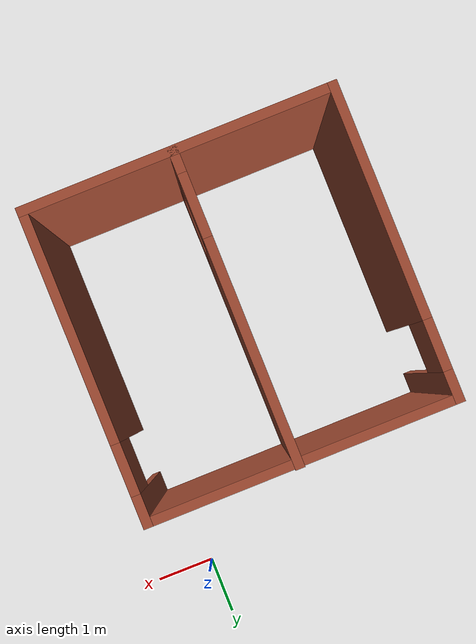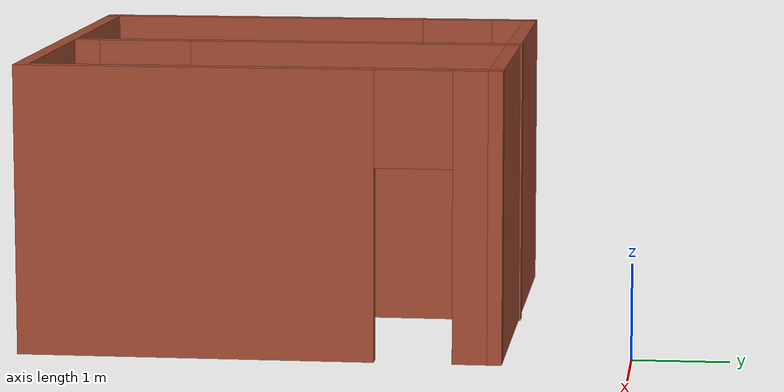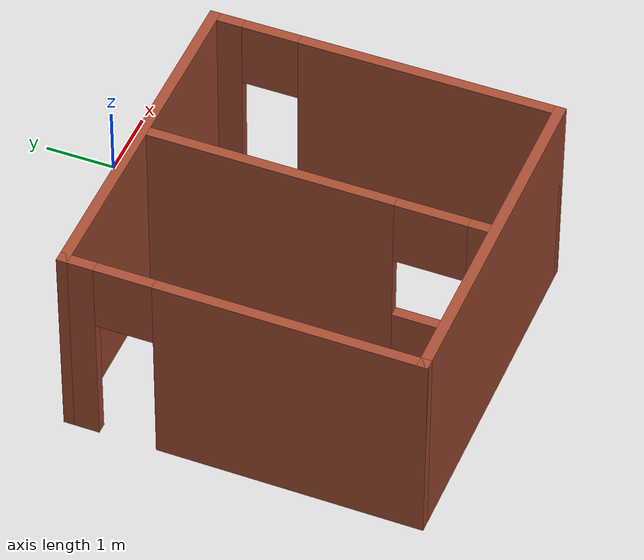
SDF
<?xml version='1.0'?>
<sdf version='1.7'>
  <model name='labyrinth'>
    <pose>-2.075 -3.1475 0 0 -0 0</pose>
    <link name='Wall_11'>
      <pose>0.075 -0.6275 0 0 -0 -1.5708</pose>
      <visual name='Wall_11_Visual_0'>
        <pose>-0.7025 0 1.5 0 -0 0</pose>
        <geometry>
          <box>
            <size>3.595 0.15 3</size>
          </box>
        </geometry>
        <material>
          <script>
            <uri>file://media/materials/scripts/gazebo.material</uri>
            <name>Gazebo/Bricks</name>
          </script>
          <ambient>1 1 1 1</ambient>
        </material>
        <meta>
          <layer>0</layer>
        </meta>
      </visual>
      <collision name='Wall_11_Collision_0'>
        <geometry>
          <box>
            <size>3.595 0.15 3</size>
          </box>
        </geometry>
        <pose>-0.7025 0 1.5 0 -0 0</pose>
      </collision>
      <visual name='Wall_11_Visual_1'>
        <pose>1.7975 0 0.5 0 -0 0</pose>
        <geometry>
          <box>
            <size>1.405 0.15 1</size>
          </box>
        </geometry>
        <material>
          <script>
            <uri>file://media/materials/scripts/gazebo.material</uri>
            <name>Gazebo/Bricks</name>
          </script>
          <ambient>1 1 1 1</ambient>
        </material>
        <meta>
          <layer>0</layer>
        </meta>
      </visual>
      <collision name='Wall_11_Collision_1'>
        <geometry>
          <box>
            <size>1.405 0.15 1</size>
          </box>
        </geometry>
        <pose>1.7975 0 0.5 0 -0 0</pose>
      </collision>
      <visual name='Wall_11_Visual_2'>
        <pose>2.2975 0 2 0 -0 0</pose>
        <geometry>
          <box>
            <size>0.405 0.15 2</size>
          </box>
        </geometry>
        <material>
          <script>
            <uri>file://media/materials/scripts/gazebo.material</uri>
            <name>Gazebo/Bricks</name>
          </script>
          <ambient>1 1 1 1</ambient>
        </material>
        <meta>
          <layer>0</layer>
        </meta>
      </visual>
      <collision name='Wall_11_Collision_2'>
        <geometry>
          <box>
            <size>0.405 0.15 2</size>
          </box>
        </geometry>
        <pose>2.2975 0 2 0 -0 0</pose>
      </collision>
      <visual name='Wall_11_Visual_3'>
        <pose>1.595 0 2.5 0 -0 0</pose>
        <geometry>
          <box>
            <size>1 0.15 1</size>
          </box>
        </geometry>
        <material>
          <script>
            <uri>file://media/materials/scripts/gazebo.material</uri>
            <name>Gazebo/Bricks</name>
          </script>
          <ambient>1 1 1 1</ambient>
        </material>
        <meta>
          <layer>0</layer>
        </meta>
      </visual>
      <collision name='Wall_11_Collision_3'>
        <geometry>
          <box>
            <size>1 0.15 1</size>
          </box>
        </geometry>
        <pose>1.595 0 2.5 0 -0 0</pose>
      </collision>
    </link>
    <link name='Wall_6'>
      <pose>-2.425 -0.6475 0 0 -0 -1.5708</pose>
      <visual name='Wall_6_Visual_0'>
        <pose>-2.2475 0 1.5 0 -0 0</pose>
        <geometry>
          <box>
            <size>0.505 0.15 3</size>
          </box>
        </geometry>
        <material>
          <script>
            <uri>file://media/materials/scripts/gazebo.material</uri>
            <name>Gazebo/Bricks</name>
          </script>
          <ambient>1 1 1 1</ambient>
        </material>
        <meta>
          <layer>0</layer>
        </meta>
      </visual>
      <collision name='Wall_6_Collision_0'>
        <geometry>
          <box>
            <size>0.505 0.15 3</size>
          </box>
        </geometry>
        <pose>-2.2475 0 1.5 0 -0 0</pose>
      </collision>
      <visual name='Wall_6_Visual_1'>
        <pose>0.6525 0 1.5 0 -0 0</pose>
        <geometry>
          <box>
            <size>3.695 0.15 3</size>
          </box>
        </geometry>
        <material>
          <script>
            <uri>file://media/materials/scripts/gazebo.material</uri>
            <name>Gazebo/Bricks</name>
          </script>
          <ambient>1 1 1 1</ambient>
        </material>
        <meta>
          <layer>0</layer>
        </meta>
      </visual>
      <collision name='Wall_6_Collision_1'>
        <geometry>
          <box>
            <size>3.695 0.15 3</size>
          </box>
        </geometry>
        <pose>0.6525 0 1.5 0 -0 0</pose>
      </collision>
      <visual name='Wall_6_Visual_2'>
        <pose>-1.595 0 2.5 0 -0 0</pose>
        <geometry>
          <box>
            <size>0.8 0.15 1</size>
          </box>
        </geometry>
        <material>
          <script>
            <uri>file://media/materials/scripts/gazebo.material</uri>
            <name>Gazebo/Bricks</name>
          </script>
          <ambient>1 1 1 1</ambient>
        </material>
        <meta>
          <layer>0</layer>
        </meta>
      </visual>
      <collision name='Wall_6_Collision_2'>
        <geometry>
          <box>
            <size>0.8 0.15 1</size>
          </box>
        </geometry>
        <pose>-1.595 0 2.5 0 -0 0</pose>
      </collision>
    </link>
    <link name='Wall_7'>
      <collision name='Wall_7_Collision'>
        <geometry>
          <box>
            <size>5 0.15 3</size>
          </box>
        </geometry>
        <pose>0 0 1.5 0 -0 0</pose>
      </collision>
      <visual name='Wall_7_Visual'>
        <pose>0 0 1.5 0 -0 0</pose>
        <geometry>
          <box>
            <size>5 0.15 3</size>
          </box>
        </geometry>
        <material>
          <script>
            <uri>file://media/materials/scripts/gazebo.material</uri>
            <name>Gazebo/Bricks</name>
          </script>
          <ambient>1 1 1 1</ambient>
        </material>
        <meta>
          <layer>0</layer>
        </meta>
      </visual>
      <pose>-0 -3.0725 0 0 -0 0</pose>
    </link>
    <link name='Wall_8'>
      <pose>2.425 -0.6475 0 0 -0 1.5708</pose>
      <visual name='Wall_8_Visual_0'>
        <pose>-0.6525 0 1.5 0 -0 0</pose>
        <geometry>
          <box>
            <size>3.695 0.15 3</size>
          </box>
        </geometry>
        <material>
          <script>
            <uri>file://media/materials/scripts/gazebo.material</uri>
            <name>Gazebo/Bricks</name>
          </script>
          <ambient>1 1 1 1</ambient>
        </material>
        <meta>
          <layer>0</layer>
        </meta>
      </visual>
      <collision name='Wall_8_Collision_0'>
        <geometry>
          <box>
            <size>3.695 0.15 3</size>
          </box>
        </geometry>
        <pose>-0.6525 0 1.5 0 -0 0</pose>
      </collision>
      <visual name='Wall_8_Visual_1'>
        <pose>2.2475 0 1.5 0 -0 0</pose>
        <geometry>
          <box>
            <size>0.505 0.15 3</size>
          </box>
        </geometry>
        <material>
          <script>
            <uri>file://media/materials/scripts/gazebo.material</uri>
            <name>Gazebo/Bricks</name>
          </script>
          <ambient>1 1 1 1</ambient>
        </material>
        <meta>
          <layer>0</layer>
        </meta>
      </visual>
      <collision name='Wall_8_Collision_1'>
        <geometry>
          <box>
            <size>0.505 0.15 3</size>
          </box>
        </geometry>
        <pose>2.2475 0 1.5 0 -0 0</pose>
      </collision>
      <visual name='Wall_8_Visual_2'>
        <pose>1.595 0 2.5 0 -0 0</pose>
        <geometry>
          <box>
            <size>0.8 0.15 1</size>
          </box>
        </geometry>
        <material>
          <script>
            <uri>file://media/materials/scripts/gazebo.material</uri>
            <name>Gazebo/Bricks</name>
          </script>
          <ambient>1 1 1 1</ambient>
        </material>
        <meta>
          <layer>0</layer>
        </meta>
      </visual>
      <collision name='Wall_8_Collision_2'>
        <geometry>
          <box>
            <size>0.8 0.15 1</size>
          </box>
        </geometry>
        <pose>1.595 0 2.5 0 -0 0</pose>
      </collision>
    </link>
    <link name='Wall_9'>
      <collision name='Wall_9_Collision'>
        <geometry>
          <box>
            <size>5 0.15 3</size>
          </box>
        </geometry>
        <pose>0 0 1.5 0 -0 0</pose>
      </collision>
      <visual name='Wall_9_Visual'>
        <pose>0 0 1.5 0 -0 0</pose>
        <geometry>
          <box>
            <size>5 0.15 3</size>
          </box>
        </geometry>
        <material>
          <script>
            <uri>file://media/materials/scripts/gazebo.material</uri>
            <name>Gazebo/Bricks</name>
          </script>
          <ambient>1 1 1 1</ambient>
        </material>
        <meta>
          <layer>0</layer>
        </meta>
      </visual>
      <pose>-0 1.7775 0 0 -0 3.14159</pose>
    </link>
    <static>1</static>
  </model>
</sdf>
